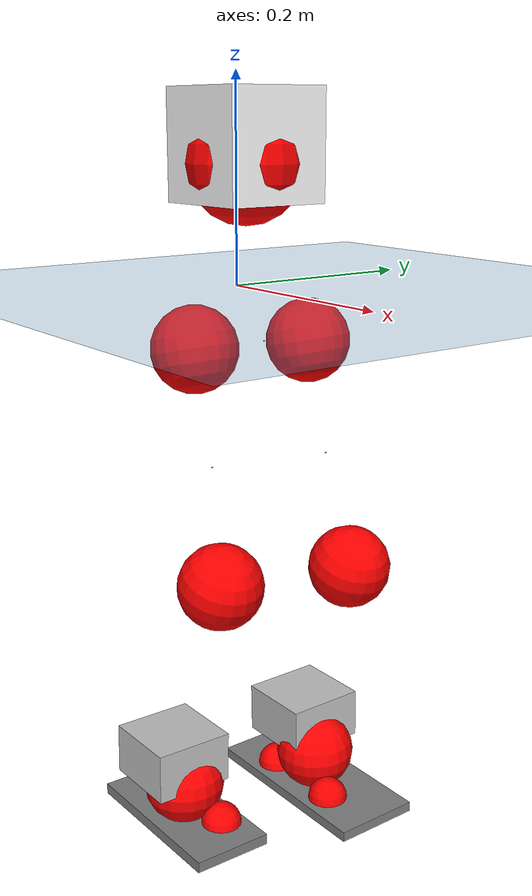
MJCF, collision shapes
<mujoco model="pi_12dof_release_v1">
  <compiler angle="radian" assetdir="assets" balanceinertia="true" inertiafromgeom="false"/>

  <option timestep="0.005" density="1.2" viscosity="2e-05"/>

  <size nkey="1"/>

  <visual>
    <quality shadowsize="8192"/>
    <map shadowclip="0.5"/>
  </visual>

  <default>
    <default class="/">
      <joint armature="0.01" damping="0.01" frictionloss="0.01"/>
      <geom contype="0" conaffinity="0" group="1" solref="-1000 -80"/>
      <site size="0.01 0.005 0.005" group="5"/>
      <general forcelimited="true" biastype="affine" gainprm="20" biasprm="0 -20 -0.5"/>
      <default class="foot">
        <geom size="0.0845 0.036 0.005" type="box" condim="6" group="4" priority="1" friction="0.9 0.2 0.2" solimp="0.015 1 0.005"/>
      </default>
      <default class="reward_collision_sphere">
        <geom group="5" rgba="1 0 0 1"/>
      </default>
    </default>
  </default>

  <asset>
    <texture type="skybox" colorspace="auto" name="//unnamed_texture_0" builtin="gradient" rgb1="0.95 0.95 0.95" rgb2="0.95 0.95 0.95" width="100" height="600"/>
    <texture type="2d" colorspace="auto" name="texplane" builtin="checker" rgb1="0.345 0.575 0.748" rgb2="0.345 0.575 0.748" markrgb="1 1 1" width="512" height="512"/>
    <material name="MatPlane" class="/" texture="texplane" texuniform="true" texrepeat="2 2" specular="0.9"/>
    <mesh name="baselink_1" class="/" file="baselink_1.STL"/>
    <mesh name="r_hip_pitch_link" class="/" file="r_hip_pitch_link.STL"/>
    <mesh name="r_hip_roll_link" class="/" file="r_hip_roll_link.STL"/>
    <mesh name="r_thigh_link" class="/" file="r_thigh_link.STL"/>
    <mesh name="r_calf_link" class="/" file="r_calf_link.STL"/>
    <mesh name="r_ankle_pitch_link" class="/" file="r_ankle_pitch_link.STL"/>
    <mesh name="r_ankle_roll_link" class="/" file="r_ankle_roll_link.STL"/>
    <mesh name="l_hip_pitch_link" class="/" file="l_hip_pitch_link.STL"/>
    <mesh name="l_hip_roll_link" class="/" file="l_hip_roll_link.STL"/>
    <mesh name="l_thigh_link" class="/" file="l_thigh_link.STL"/>
    <mesh name="l_calf_link" class="/" file="l_calf_link.STL"/>
    <mesh name="l_ankle_pitch_link" class="/" file="l_ankle_pitch_link.STL"/>
    <mesh name="l_ankle_roll_link" class="/" file="l_ankle_roll_link.STL"/>
  </asset>

  <worldbody>
    <geom name="floor" class="/" size="100 100 0.125" type="plane" group="0" material="MatPlane"/>
    <light name="toplight_shadow" class="/" pos="0 0 5" dir="0.0990148 0.0990148 -0.990148" type="directional" ambient="0.04 0.04 0.04" diffuse="0.55 0.55 0.55" specular="0.12 0.12 0.12"/>
    <light name="toplight_fill" class="/" pos="0 0 5" dir="0.0990148 0.0990148 -0.990148" type="directional" castshadow="false" ambient="0.04 0.04 0.04" diffuse="0.3 0.3 0.3" specular="0.08 0.08 0.08"/>
    <body name="trunk" pos="0.00909386 0.00499824 0.00132043" quat="0.999995 -4.29826e-05 -0.0023601 0.00224308">
      <inertial pos="0.0114374 -0.00281076 0.0643545" quat="0.694429 0.0108505 0.0153199 0.719317" mass="2.54607" diaginertia="0.00138876 0.00481245 0.042896"/>
      <joint name="//unnamed_joint_0" type="free"/>
      <geom name="//unnamed_geom_1" class="/" type="mesh" density="0" rgba="1 1 1 1" mesh="baselink_1"/>
      <geom name="//unnamed_geom_2" class="/" size="0.0532266 0.0532266 0.0532266" pos="0 0 0.130634" type="box" rgba="1 1 1 1"/>
      <geom name="//unnamed_geom_3" class="reward_collision_sphere" size="0.0585493" pos="0 0 0.114305"/>
      <site name="imu" class="/" pos="0.00861942 -0.00498045 -0.000280596" size="0.0106453"/>
      <camera name="track" class="/" pos="0 -1.76276 0" quat="0.707107 0.707107 0 0" mode="trackcom"/>
      <camera name="ego_camera" class="/" pos="0.050947 0 0.293927" quat="-0.5 -0.5 0.5 0.5"/>
      <body name="r_hip_pitch_link" pos="0.00371352 -0.0163234 -0.0552054" quat="0.992284 -0.00432426 -0.123903 -0.00121168">
        <inertial pos="0.0106421 -0.0459681 0.0025869" quat="-0.0198301 0.711384 -0.0336363 0.701718" mass="0.39674" diaginertia="1.40011e-05 5.22907e-05 0.00084022"/>
        <joint name="r_hip_pitch_joint" class="/" pos="0 0 0" axis="0.023618 -0.999691 -0.00774203" stiffness="0.0451718" range="-1.7458 1.24066" armature="0.0103624" damping="0.0379074" frictionloss="0.00789287"/>
        <geom name="//unnamed_geom_4" class="/" type="mesh" density="0" rgba="0.75294 0.75294 0.75294 1" mesh="r_hip_pitch_link"/>
        <geom name="//unnamed_geom_5" class="/" size="0.000532266 0.000532266 0.000532266" type="box" rgba="0.75294 0.75294 0.75294 1"/>
        <body name="r_hip_roll_link" pos="0.000518916 -0.0479671 -0.000939944" quat="1 -1.31218e-05 9.25247e-06 5.14369e-05">
          <inertial pos="-0.0102588 0.0020693 -0.107206" quat="0.703494 -0.073149 -0.0766369 0.70276" mass="0.471708" diaginertia="4.77139e-05 0.000149683 0.00152984"/>
          <joint name="r_hip_roll_joint" class="/" pos="0 0 0" axis="-0.999996 0.00178809 -0.00230277" range="0.0144881 0.440587" armature="0.0152811" damping="0.0320203" frictionloss="0.0115983"/>
          <geom name="//unnamed_geom_6" class="/" type="mesh" density="0" rgba="0.75294 0.75294 0.75294 1" mesh="r_hip_roll_link"/>
          <geom name="//unnamed_geom_7" class="/" size="0.000532266 0.000532266 0.000532266" type="box" rgba="0.75294 0.75294 0.75294 1"/>
          <geom name="//unnamed_geom_8" class="reward_collision_sphere" size="0.0425813"/>
          <body name="r_thigh_link" pos="-0.00101139 0.00104664 -0.113749" quat="0.999998 0.000222124 0.000964373 0.00199912">
            <inertial pos="-0.00362123 -0.00180893 -0.0720146" quat="0.758712 0.651125 -0.0182975 0.00755876" mass="0.135603" diaginertia="1.81628e-05 4.8559e-05 0.000709102"/>
            <joint name="r_thigh_joint" class="/" pos="0 0 0" axis="0.00807127 0.03008 -0.999515" stiffness="0.0453563" range="-0.291513 0.507041" armature="0.0147584" damping="0" frictionloss="0.00962715"/>
            <geom name="//unnamed_geom_9" class="/" type="mesh" density="0" rgba="0.75294 0.75294 0.75294 1" mesh="r_thigh_link"/>
            <geom name="//unnamed_geom_10" class="/" size="0.000532266 0.000532266 0.000532266" type="box" rgba="0.75294 0.75294 0.75294 1"/>
            <body name="r_calf_link" pos="-0.000896576 -0.00953355 -0.114706" quat="0.947625 -0.00106092 0.319383 0.000216351">
              <inertial pos="-0.00641661 -0.000799981 -0.113773" quat="0.999942 0.00327043 -0.00563586 0.0085344" mass="0.793169" diaginertia="0.000469754 0.00173122 0.00200043"/>
              <joint name="r_calf_joint" class="/" pos="0 0 0" axis="-0.00048995 -0.999996 0.00285163" range="-1.68385 0.796211" armature="0.00471649" damping="0.0412251" frictionloss="0.00530304"/>
              <geom name="//unnamed_geom_11" class="/" type="mesh" density="0" rgba="0.75294 0.75294 0.75294 1" mesh="r_calf_link"/>
              <geom name="//unnamed_geom_12" class="/" size="0.000532266 0.000532266 0.000532266" type="box" rgba="0.75294 0.75294 0.75294 1"/>
              <geom name="//unnamed_geom_13" class="reward_collision_sphere" size="0.0425813"/>
              <body name="r_ankle_pitch_link" pos="0.00276192 0.000292651 -0.236297" quat="0.980812 0.000986822 -0.194946 0.00187571">
                <inertial pos="0.00845487 0.0128799 4.82146e-05" quat="0.00325139 0.7122 -0.00407901 0.701957" mass="0.242047" diaginertia="4.56224e-05 0.000122185 0.00152085"/>
                <joint name="r_ankle_pitch_joint" class="/" pos="0 0 0" axis="0.0483187 -0.998803 -0.00764149" stiffness="0.0435998" range="-1.16816 0.382078" armature="0.00984096" damping="0.00901828" frictionloss="0.0131734"/>
                <geom name="//unnamed_geom_14" class="/" type="mesh" density="0" rgba="0.75294 0.75294 0.75294 1" mesh="r_ankle_pitch_link"/>
                <geom name="//unnamed_geom_15" class="/" size="0.0415168 0.0425813 0.0266133" type="box" rgba="0.75294 0.75294 0.75294 1"/>
                <body name="r_ankle_roll_link" pos="0.0465521 0.0055268 0.00164853" quat="1 -0.000166862 -6.89437e-05 7.17599e-05">
                  <inertial pos="-0.0190239 -0.000388899 -0.0235851" quat="0.557887 0.42702 0.440347 0.559026" mass="0.57416" diaginertia="0.000136541 0.000535767 0.00308345"/>
                  <joint name="r_ankle_roll_joint" class="/" pos="0 0 0" axis="-0.998456 0.0555398 -0.0012519" stiffness="0.00515012" range="-0.189142 0.289102" armature="0.0114625" damping="0.02349" frictionloss="0.0114208"/>
                  <geom name="//unnamed_geom_16" class="/" type="mesh" density="0" rgba="0.75294 0.75294 0.75294 1" mesh="r_ankle_roll_link"/>
                  <geom name="//unnamed_geom_17" class="/" type="mesh" rgba="0.75294 0.75294 0.75294 1" mesh="r_ankle_roll_link"/>
                  <geom name="right_foot" class="foot" size="0.0911326 0.0427538 0.00571829" pos="-0.0346439 0 -0.0718488"/>
                  <geom name="//unnamed_geom_19" class="reward_collision_sphere" size="0.0425813" pos="-0.0339646 0 -0.0326585"/>
                  <geom name="//unnamed_geom_20" class="reward_collision_sphere" size="0.0212906" pos="0.0101894 0.0176276 -0.0653171"/>
                  <geom name="//unnamed_geom_21" class="reward_collision_sphere" size="0.0212906" pos="-0.0815151 0.0176276 -0.0653171"/>
                  <site name="right_foot" class="foot" pos="-0.0346439 0 -0.0718488" size="0.0106453"/>
                </body>
              </body>
            </body>
          </body>
        </body>
      </body>
      <body name="l_hip_pitch_link" pos="-0.000678557 0.0216536 -0.0575395" quat="0.992621 0.00398397 -0.12119 -0.00114137">
        <inertial pos="-0.00851842 0.0468794 0.00077255" quat="-0.0384695 0.705684 0.0295868 0.706863" mass="0.484884" diaginertia="1.89743e-05 5.33289e-05 0.00119347"/>
        <joint name="l_hip_pitch_joint" class="/" pos="0 0 0" axis="-0.000852939 0.999979 -0.00638784" stiffness="0.00336114" range="-1.31678 1.79144" armature="0.00755089" damping="0.0316487" frictionloss="0.00975289"/>
        <geom name="//unnamed_geom_22" class="/" type="mesh" density="0" rgba="0.75294 0.75294 0.75294 1" mesh="l_hip_pitch_link"/>
        <geom name="//unnamed_geom_23" class="/" size="0.000532266 0.000532266 0.000532266" type="box" rgba="0.75294 0.75294 0.75294 1"/>
        <body name="l_hip_roll_link" pos="0.00850994 0.04802 -0.00562143" quat="0.999991 0.00257843 -0.0006161 -0.00342384">
          <inertial pos="0.000303275 -0.000300707 -0.100579" quat="0.695615 -0.104726 -0.055131 0.7086" mass="0.508351" diaginertia="4.80637e-05 0.000158663 0.00147746"/>
          <joint name="l_hip_roll_joint" class="/" pos="0 0 0" axis="-0.999934 -0.00340851 -0.0109886" range="-0.495436 0.140695" armature="0.0075347" damping="0.0554578" frictionloss="0.0092867"/>
          <geom name="//unnamed_geom_24" class="/" type="mesh" density="0" rgba="0.75294 0.75294 0.75294 1" mesh="l_hip_roll_link"/>
          <geom name="//unnamed_geom_25" class="/" size="0.000532266 0.000532266 0.000532266" type="box" rgba="0.75294 0.75294 0.75294 1"/>
          <geom name="//unnamed_geom_26" class="reward_collision_sphere" size="0.0425813"/>
          <body name="l_thigh_link" pos="-0.000551331 0.000947339 -0.115891" quat="0.999999 0.0011579 0.000593383 2.28356e-05">
            <inertial pos="0.000204249 -0.00085806 -0.0811066" quat="0.67597 0.736929 -0.000478892 0.000100323" mass="0.134967" diaginertia="1.8153e-05 5.20894e-05 0.000664022"/>
            <joint name="l_thigh_joint" class="/" pos="0 0 0" axis="-0.000620789 -0.00294067 -0.999995" range="-0.608082 0.258234" armature="0.012473" damping="1.86827e-05" frictionloss="0.00983759"/>
            <geom name="//unnamed_geom_27" class="/" type="mesh" density="0" rgba="0.75294 0.75294 0.75294 1" mesh="l_thigh_link"/>
            <geom name="//unnamed_geom_28" class="/" size="0.000532266 0.000532266 0.000532266" type="box" rgba="0.75294 0.75294 0.75294 1"/>
            <body name="l_calf_link" pos="-0.00167964 0.00875399 -0.121209" quat="0.947371 0.00238427 0.320128 0.00052323">
              <inertial pos="0.00026804 -0.0029169 -0.113205" quat="0.99932 -0.00261671 -0.0274263 -0.0245147" mass="0.955996" diaginertia="0.000477464 0.00173078 0.00202253"/>
              <joint name="l_calf_joint" class="/" pos="0 0 0" axis="-0.0137357 0.999801 -0.0144608" range="-0.671859 1.6835" armature="0.0156501" damping="0" frictionloss="0.00569892"/>
              <geom name="//unnamed_geom_29" class="/" type="mesh" density="0" rgba="0.75294 0.75294 0.75294 1" mesh="l_calf_link"/>
              <geom name="//unnamed_geom_30" class="/" size="0.000532266 0.000532266 0.000532266" type="box" rgba="0.75294 0.75294 0.75294 1"/>
              <geom name="//unnamed_geom_31" class="reward_collision_sphere" size="0.0425813"/>
              <body name="l_ankle_pitch_link" pos="0.00163001 0.00524374 -0.22204" quat="0.979958 0.000519034 -0.1992 -0.000670031">
                <inertial pos="0.00429742 0.00179885 0.00161765" quat="0.000676714 0.707538 0.00105783 0.706674" mass="0.221571" diaginertia="4.60234e-05 0.000118355 0.00155235"/>
                <joint name="l_ankle_pitch_joint" class="/" pos="0 0 0" axis="-0.00634489 0.999979 -0.00141957" range="-0.538301 1.29803" armature="0.0107285" damping="0" frictionloss="0.00972124"/>
                <geom name="//unnamed_geom_32" class="/" type="mesh" density="0" rgba="0.75294 0.75294 0.75294 1" mesh="l_ankle_pitch_link"/>
                <geom name="//unnamed_geom_33" class="/" size="0.0415168 0.0425813 0.0266133" type="box" rgba="0.75294 0.75294 0.75294 1"/>
                <body name="l_ankle_roll_link" pos="0.0622563 -0.0056841 -0.00212519" quat="1 -0.000423217 7.63813e-05 0.000425375">
                  <inertial pos="-0.0266261 -0.00308854 -0.0267967" quat="0.563671 0.427446 0.436831 0.555647" mass="0.612374" diaginertia="0.000175772 0.000654277 0.00346729"/>
                  <joint name="l_ankle_roll_joint" class="/" pos="0 0 0" axis="-0.999504 -0.0184909 0.0254989" stiffness="0.0178194" range="-0.15815 0.144455" armature="0.0116784" damping="0" frictionloss="0.0108082"/>
                  <geom name="//unnamed_geom_34" class="/" type="mesh" density="0" rgba="0.75294 0.75294 0.75294 1" mesh="l_ankle_roll_link"/>
                  <geom name="//unnamed_geom_35" class="/" type="mesh" rgba="0.75294 0.75294 0.75294 1" mesh="l_ankle_roll_link"/>
                  <geom name="left_foot" class="foot" size="0.107614 0.0468497 0.00536064" pos="-0.0346439 0 -0.0718488"/>
                  <geom name="//unnamed_geom_37" class="reward_collision_sphere" size="0.0425813" pos="-0.0339646 0 -0.0326585"/>
                  <geom name="//unnamed_geom_38" class="reward_collision_sphere" size="0.0212906" pos="0.0101894 -0.0176276 -0.0653171"/>
                  <geom name="//unnamed_geom_39" class="reward_collision_sphere" size="0.0212906" pos="-0.0815151 -0.0176276 -0.0653171"/>
                  <site name="left_foot" class="foot" pos="-0.0346439 0 -0.0718488" size="0.0106453"/>
                </body>
              </body>
            </body>
          </body>
        </body>
      </body>
    </body>
  </worldbody>

  <contact>
    <pair class="/" geom1="floor" geom2="right_foot" name="//unnamed_contact_1"/>
    <pair class="/" geom1="floor" geom2="left_foot" name="//unnamed_contact_0"/>
  </contact>

  <actuator>
    <general name="r_hip_pitch_joint" class="/" joint="r_hip_pitch_joint" forcerange="-21.8265 21.8265" gainprm="22.0569" biasprm="0 -22.0569 -0.579759"/>
    <general name="r_hip_roll_joint" class="/" joint="r_hip_roll_joint" forcerange="-22.6512 22.6512" gainprm="22.0569" biasprm="0 -22.0569 -0.579759"/>
    <general name="r_thigh_joint" class="/" joint="r_thigh_joint" forcerange="-22.1304 22.1304" gainprm="22.0569" biasprm="0 -22.0569 -0.579759"/>
    <general name="r_calf_joint" class="/" joint="r_calf_joint" forcerange="-21.3608 21.3608" gainprm="22.0569" biasprm="0 -22.0569 -0.579759"/>
    <general name="r_ankle_pitch_joint" class="/" joint="r_ankle_pitch_joint" forcerange="-23.1141 23.1141" gainprm="22.0569" biasprm="0 -22.0569 -0.579759"/>
    <general name="r_ankle_roll_joint" class="/" joint="r_ankle_roll_joint" forcerange="-21.4122 21.4122" gainprm="22.0569" biasprm="0 -22.0569 -0.579759"/>
    <general name="l_hip_pitch_joint" class="/" joint="l_hip_pitch_joint" forcerange="-20.9749 20.9749" gainprm="22.0569" biasprm="0 -22.0569 -0.579759"/>
    <general name="l_hip_roll_joint" class="/" joint="l_hip_roll_joint" forcerange="-24.7592 24.7592" gainprm="22.0569" biasprm="0 -22.0569 -0.579759"/>
    <general name="l_thigh_joint" class="/" joint="l_thigh_joint" forcerange="-22.1406 22.1406" gainprm="22.0569" biasprm="0 -22.0569 -0.579759"/>
    <general name="l_calf_joint" class="/" joint="l_calf_joint" forcerange="-13.8786 13.8786" gainprm="22.0569" biasprm="0 -22.0569 -0.579759"/>
    <general name="l_ankle_pitch_joint" class="/" joint="l_ankle_pitch_joint" forcerange="-22.7542 22.7542" gainprm="22.0569" biasprm="0 -22.0569 -0.579759"/>
    <general name="l_ankle_roll_joint" class="/" joint="l_ankle_roll_joint" forcerange="-27.0496 27.0496" gainprm="22.0569" biasprm="0 -22.0569 -0.579759"/>
  </actuator>

  <sensor>
    <gyro site="imu" name="imu_angular_velocity"/>
    <velocimeter site="imu" name="imu_linear_velocity"/>
    <framelinvel objtype="site" objname="left_foot" name="left_foot_global_linear_velocity"/>
    <framelinvel objtype="site" objname="right_foot" name="right_foot_global_linear_velocity"/>
  </sensor>

  <keyframe>
    <key name="home" qpos="0 0 0.291 1 0 0 0 0.4 0 0 -0.8 0.4 0 -0.4 0 0 0.8 -0.4 0"/>
  </keyframe>
</mujoco>
